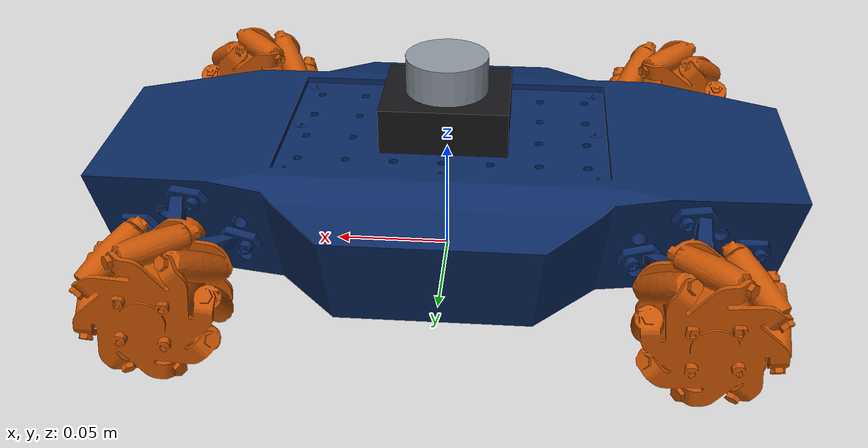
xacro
<?xml version="1.0"?>
<!-- Mecanum 01 Rev D W11.25 with an LDRobot D500 LiDAR. -->
<robot name="revd_lidar" xmlns:xacro="http://www.ros.org/wiki/xacro">
  <xacro:arg name="prefix" default=""/>
  <xacro:arg name="use_gazebo" default="false"/>
  <xacro:arg name="controllers_file" default=""/>

  <xacro:include filename="materials.xacro"/>
  <xacro:include filename="inertials.xacro"/>
  <xacro:include filename="properties.xacro"/>
  <xacro:include filename="macros/mecanum_wheels.xacro"/>
  <xacro:include filename="base.xacro"/>
  <xacro:include filename="tof.xacro"/>
  <xacro:include filename="lidar.xacro"/>
  <xacro:include filename="imu.xacro"/>
  <xacro:include filename="ros2_control.xacro"/>
  <xacro:include filename="gazebo.xacro"/>
  <xacro:include filename="tof.gazebo.xacro"/>
  <xacro:include filename="lidar.gazebo.xacro"/>
  <xacro:include filename="imu.gazebo.xacro"/>

  <xacro:mobile_base_assembly prefix="$(arg prefix)"/>
  <xacro:mobile_base_tof_array prefix="$(arg prefix)"/>
  <xacro:mobile_base_lidar prefix="$(arg prefix)"/>
  <xacro:mobile_base_imu prefix="$(arg prefix)"/>

  <xacro:mobile_base_ros2_control
    prefix="$(arg prefix)"
    use_gazebo="$(arg use_gazebo)"
    controllers_file="$(arg controllers_file)"/>

  <xacro:if value="$(arg use_gazebo)">
    <xacro:revd_lidar_gazebo controllers_file="$(arg controllers_file)"/>
    <xacro:mobile_base_tof_gazebo prefix="$(arg prefix)"/>
    <xacro:mobile_base_lidar_gazebo prefix="$(arg prefix)"/>
    <xacro:mobile_base_imu_gazebo prefix="$(arg prefix)"/>
  </xacro:if>
</robot>

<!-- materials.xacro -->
<robot xmlns:xacro="http://www.ros.org/wiki/xacro">
  <material name="base_blue">
    <color rgba="0.04 0.16 0.38 1.0"/>
  </material>
  <material name="wheel_orange">
    <color rgba="0.78 0.33 0.02 1.0"/>
  </material>
  <material name="electronics_green">
    <color rgba="0.10 0.45 0.22 1.0"/>
  </material>
  <material name="sensor_grey">
    <color rgba="0.55 0.58 0.62 1.0"/>
  </material>
  <material name="lidar_black">
    <color rgba="0.08 0.08 0.09 1.0"/>
  </material>
</robot>

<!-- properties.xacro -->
<robot xmlns:xacro="http://www.ros.org/wiki/xacro">

  <!-- Hull bounding box (clearance_check.txt: 296.9 x 168.1 x 49.0, underside
       11.6; the rim at 60.56 is build script TOP_Z). The underside sits
       11.56 mm off the ground. -->
  <xacro:property name="hull_length" value="0.2969"/>
  <xacro:property name="hull_width" value="0.1681"/>
  <xacro:property name="hull_height" value="0.049"/>
  <xacro:property name="hull_bottom_z" value="0.01156"/>

  <!-- 60 mm printed mecanum wheel: roller envelope 59.92, 31.5 over the
       plates. FL and RR are hand A, FR and RL hand B. -->
  <xacro:property name="wheel_radius" value="0.02996"/>
  <xacro:property name="wheel_width" value="0.0315"/>
  <!-- wheelbase: front-to-rear axle spacing (build script WX = 105, AZ =
       29.96); wheel_separation: track, roller crowns at y = +-93.26 in the
       assembly mesh. -->
  <xacro:property name="wheelbase" value="0.210"/>
  <xacro:property name="wheel_separation" value="0.1865"/>

  <!-- base_link sits on the axle line, so the wheel joints are at z = 0. -->
  <xacro:property name="base_link_height" value="${wheel_radius}"/>

  <!-- JGY370 12 V 150 rpm worm motor, direct drive: 15.7 rad/s no-load,
       0.47 m/s at the wheel (Seeed 108990007 datasheet, 160 rpm variant:
       load speed 128 rpm, so expect ~0.40 m/s loaded). -->
  <xacro:property name="wheel_max_velocity" value="15.7"/>
  <xacro:property name="wheel_joint_damping" value="0.001"/>
  <xacro:property name="wheel_joint_friction" value="0.001"/>

  <xacro:property name="body_mass" value="1.40"/>
  <xacro:property name="body_com_z" value="0.030"/>
  <xacro:property name="wheel_mass" value="0.08"/>

  <xacro:property name="deck_top_z" value="0.05806"/>

  <xacro:property name="tof_board_width" value="0.0127"/>
  <xacro:property name="tof_board_length" value="0.0178"/>
  <xacro:property name="tof_pcb_thickness" value="0.00102"/>
  <xacro:property name="tof_board_offset_y" value="-0.00125"/>
  <xacro:property name="tof_board_offset_z" value="0.0001"/>
  <xacro:property name="tof_mass" value="0.0005"/>
  <!-- VL53L7CX package, 6.4 x 3.0 mm, long side across the board, standing
       the drawing's 1.6 mm above the PCB. -->
  <xacro:property name="tof_module_length" value="0.0064"/>
  <xacro:property name="tof_module_width" value="0.003"/>
  <xacro:property name="tof_module_height" value="0.0016"/>
  <xacro:property name="tof_board_thickness"
                  value="${tof_pcb_thickness + tof_module_height}"/>
  <!-- 8 x 8 zones over 60 x 60 degrees; Gazebo rays sit at zone centres,
       half a zone inside the field edge. -->
  <xacro:property name="tof_fov" value="${radians(60)}"/>
  <xacro:property name="tof_zones" value="8"/>
  <xacro:property name="tof_zone_angle" value="${tof_fov / tof_zones}"/>
  <xacro:property name="tof_half_span"
                  value="${tof_fov / 2.0 - tof_zone_angle / 2.0}"/>
  <xacro:property name="tof_min_range" value="0.02"/>
  <xacro:property name="tof_max_range" value="2.0"/>
  <xacro:property name="tof_range_resolution" value="0.001"/>
  <xacro:property name="tof_update_rate" value="15.0"/>
  <xacro:property name="tof_pitch" value="${1.5 * tof_zone_angle}"/>
  <xacro:property name="tof_ground_z" value="0.032"/>
  <xacro:property name="tof_z" value="${tof_ground_z - base_link_height}"/>
  <xacro:property name="tof_front_x"
                  value="${(0.135303 + 0.19509 * tof_ground_z) / 0.98079}"/>
  <xacro:property name="tof_side_y"
                  value="${(0.072533 + 0.19509 * tof_ground_z) / 0.98079}"/>

  <xacro:property name="lidar_length" value="0.054"/>
  <xacro:property name="lidar_width" value="0.04629"/>
  <xacro:property name="lidar_height" value="0.035"/>
  <xacro:property name="lidar_head_radius" value="${0.03529 / 2.0}"/>
  <xacro:property name="lidar_mass" value="0.045"/>
  <xacro:property name="lidar_window_below_top" value="0.0078"/>
  <xacro:property name="lidar_scan_above_base"
                  value="${lidar_height - lidar_window_below_top}"/>
  <xacro:property name="lidar_head_height"
                  value="${2.0 * lidar_window_below_top}"/>
  <xacro:property name="lidar_base_height"
                  value="${lidar_height - lidar_head_height}"/>
  <xacro:property name="lidar_adapter_t" value="0.0"/>
  <xacro:property name="lidar_x" value="0.0"/>
  <xacro:property name="lidar_y" value="0.0"/>
  <xacro:property name="lidar_z"
                  value="${deck_top_z + lidar_adapter_t + lidar_scan_above_base
                          - base_link_height}"/>
  <xacro:property name="lidar_roll" value="0.0"/>
  <xacro:property name="lidar_pitch" value="0.0"/>
  <xacro:property name="lidar_yaw" value="0.0"/>
  <xacro:property name="lidar_update_rate" value="10.0"/>
  <xacro:property name="lidar_samples" value="500"/>
  <xacro:property name="lidar_min_range" value="0.03"/>
  <xacro:property name="lidar_max_range" value="12.0"/>
  <xacro:property name="lidar_range_resolution" value="0.001"/>

  <xacro:property name="imu_x" value="0.0"/>
  <xacro:property name="imu_y" value="0.0"/>
  <xacro:property name="imu_z" value="0.0"/>
  <xacro:property name="imu_update_rate" value="100"/>
  <xacro:property name="imu_gyro_stddev" value="1.7e-3"/>
  <xacro:property name="imu_gyro_bias_stddev" value="1.5e-4"/>
  <xacro:property name="imu_accel_stddev" value="0.0104"/>

</robot>

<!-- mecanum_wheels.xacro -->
<robot xmlns:xacro="http://www.ros.org/wiki/xacro">
  <xacro:macro name="mecanum_wheel" params="prefix name mesh x y">
    <link name="${prefix}${name}_wheel_link">
      <visual>
        <geometry>
          <mesh filename="package://revd_lidar_description/meshes/${mesh}"/>
        </geometry>
        <material name="wheel_orange"/>
      </visual>

      <collision name="wheel_collision">
        <origin xyz="0 0 0" rpy="${pi / 2.0} 0 0"/>
        <geometry>
          <cylinder radius="${wheel_radius}" length="${wheel_width}"/>
        </geometry>
      </collision>

      <xacro:cylinder_inertial mass="${wheel_mass}" radius="${wheel_radius}"
                               length="${wheel_width}">
        <origin xyz="0 0 0" rpy="${pi / 2.0} 0 0"/>
      </xacro:cylinder_inertial>
    </link>

    <joint name="${prefix}${name}_wheel_joint" type="continuous">
      <parent link="${prefix}base_link"/>
      <child link="${prefix}${name}_wheel_link"/>
      <origin xyz="${x} ${y} 0" rpy="0 0 0"/>
      <axis xyz="0 1 0"/>
      <dynamics damping="${wheel_joint_damping}"
                friction="${wheel_joint_friction}"/>
      <limit effort="8.0" velocity="${wheel_max_velocity}"/>
    </joint>

    <!-- No contact parameters here: gz sdf -p drops them. generate_sim_sdf.py
         injects the anisotropic mecanum surface after conversion. -->
    <gazebo reference="${prefix}${name}_wheel_link">
      <selfCollide>false</selfCollide>
    </gazebo>
  </xacro:macro>
</robot>

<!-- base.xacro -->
<robot xmlns:xacro="http://www.ros.org/wiki/xacro">
  <xacro:macro name="mobile_base_assembly" params="prefix">
    <link name="${prefix}base_footprint"/>

    <joint name="${prefix}base_footprint_to_base_link_joint" type="fixed">
      <parent link="${prefix}base_footprint"/>
      <child link="${prefix}base_link"/>
      <origin xyz="0 0 ${base_link_height}" rpy="0 0 0"/>
    </joint>

    <link name="${prefix}base_link">
      <visual>
        <origin xyz="0 0 ${-base_link_height}" rpy="0 0 0"/>
        <geometry>
          <mesh filename="package://revd_lidar_description/meshes/body.stl"/>
        </geometry>
        <material name="base_blue"/>
      </visual>
      <collision>
        <origin xyz="0 0 ${hull_bottom_z + hull_height / 2.0 - base_link_height}"
                rpy="0 0 0"/>
        <geometry>
          <box size="${hull_length} ${hull_width} ${hull_height}"/>
        </geometry>
      </collision>
      <xacro:box_inertial mass="${body_mass}"
                          x="${hull_length}" y="${hull_width}" z="${hull_height}">
        <origin xyz="0 0 ${body_com_z - base_link_height}" rpy="0 0 0"/>
      </xacro:box_inertial>
    </link>

    <!-- Wheel joint names are coupled to ros2_control and controller YAML. -->
    <xacro:mecanum_wheel prefix="${prefix}" name="front_left" mesh="wheel_fl.stl"
                         x="${wheelbase / 2.0}" y="${wheel_separation / 2.0}"/>
    <xacro:mecanum_wheel prefix="${prefix}" name="front_right" mesh="wheel_fr.stl"
                         x="${wheelbase / 2.0}" y="${-wheel_separation / 2.0}"/>
    <xacro:mecanum_wheel prefix="${prefix}" name="rear_right" mesh="wheel_rr.stl"
                         x="${-wheelbase / 2.0}" y="${-wheel_separation / 2.0}"/>
    <xacro:mecanum_wheel prefix="${prefix}" name="rear_left" mesh="wheel_rl.stl"
                         x="${-wheelbase / 2.0}" y="${wheel_separation / 2.0}"/>
  </xacro:macro>
</robot>

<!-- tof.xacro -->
<robot xmlns:xacro="http://www.ros.org/wiki/xacro">
  <xacro:macro name="mobile_base_tof" params="prefix name x y z pitch yaw">
    <link name="${prefix}tof_${name}_link">
      <!-- The populated PCB, set back behind the module that stands on it. -->

      <visual>
        <origin
          xyz="${-tof_module_height - tof_pcb_thickness / 2.0}
               ${tof_board_offset_y} ${tof_board_offset_z}"
          rpy="0 0 0"/>
        <geometry>
          <box size="${tof_pcb_thickness} ${tof_board_width}
                     ${tof_board_length}"/>
        </geometry>
        <material name="electronics_green"/>
      </visual>
      <!-- The sensor package; its front face is the aperture. -->
      <visual>
        <origin xyz="${-tof_module_height / 2.0} 0 0" rpy="0 0 0"/>
        <geometry>
          <box size="${tof_module_height} ${tof_module_length}
                     ${tof_module_width}"/>
        </geometry>
        <material name="sensor_grey"/>
      </visual>
      <!-- One box over the whole carrier, board and module together. -->
      <collision>
        <origin xyz="${-tof_board_thickness / 2.0}
                     ${tof_board_offset_y} ${tof_board_offset_z}" rpy="0 0 0"/>
        <geometry>
          <box size="${tof_board_thickness} ${tof_board_width}
                     ${tof_board_length}"/>
        </geometry>
      </collision>
      <xacro:box_inertial mass="${tof_mass}"
                          x="${tof_board_thickness}" y="${tof_board_width}"
                          z="${tof_board_length}">
        <origin xyz="${-tof_board_thickness / 2.0}
                     ${tof_board_offset_y} ${tof_board_offset_z}" rpy="0 0 0"/>
      </xacro:box_inertial>
    </link>

    <joint name="${prefix}base_link_to_tof_${name}_link_joint" type="fixed">
      <parent link="${prefix}base_link"/>
      <child link="${prefix}tof_${name}_link"/>
      <origin xyz="${x} ${y} ${z}" rpy="0 ${pitch} ${yaw}"/>
    </joint>

    <link name="${prefix}tof_${name}_rows_frame"/>
    <joint name="${prefix}base_link_to_tof_${name}_rows_frame_joint"
           type="fixed">
      <parent link="${prefix}base_link"/>
      <child link="${prefix}tof_${name}_rows_frame"/>
      <origin xyz="${x} ${y} ${z}" rpy="${-pi / 2.0} 0 ${yaw - pi / 2.0}"/>
    </joint>
  </xacro:macro>

  <!-- One sensor at the centre of each hull face. The four 60 degree fans
       cover 240 of 360 degrees; the D500 covers the 30 degree corner wedges
       above its scan plane. -->
  <xacro:macro name="mobile_base_tof_array" params="prefix">
    <xacro:mobile_base_tof prefix="${prefix}" name="front"
                           x="${tof_front_x}" y="0" z="${tof_z}"
                           pitch="${tof_pitch}" yaw="0"/>
    <xacro:mobile_base_tof prefix="${prefix}" name="rear"
                           x="${-tof_front_x}" y="0" z="${tof_z}"
                           pitch="${tof_pitch}" yaw="${pi}"/>
    <xacro:mobile_base_tof prefix="${prefix}" name="left"
                           x="0" y="${tof_side_y}" z="${tof_z}"
                           pitch="${tof_pitch}" yaw="${pi / 2.0}"/>
    <xacro:mobile_base_tof prefix="${prefix}" name="right"
                           x="0" y="${-tof_side_y}" z="${tof_z}"
                           pitch="${tof_pitch}" yaw="${-pi / 2.0}"/>
  </xacro:macro>
</robot>

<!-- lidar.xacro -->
<robot xmlns:xacro="http://www.ros.org/wiki/xacro">
  <xacro:macro name="mobile_base_lidar" params="prefix">
    <link name="${prefix}laser_link">
      <visual>
        <origin xyz="0 0 ${lidar_base_height / 2.0 - lidar_scan_above_base}"
                rpy="0 0 0"/>
        <geometry>
          <box size="${lidar_length} ${lidar_width} ${lidar_base_height}"/>
        </geometry>
        <material name="lidar_black"/>
      </visual>
      <visual>
        <geometry>
          <cylinder radius="${lidar_head_radius}"
                    length="${lidar_head_height}"/>
        </geometry>
        <material name="sensor_grey"/>
      </visual>
      <collision>
        <origin xyz="0 0 ${lidar_height / 2.0 - lidar_scan_above_base}"
                rpy="0 0 0"/>
        <geometry>
          <box size="${lidar_length} ${lidar_width} ${lidar_height}"/>
        </geometry>
      </collision>
      <xacro:box_inertial mass="${lidar_mass}"
                          x="${lidar_length}" y="${lidar_width}"
                          z="${lidar_height}">
        <origin xyz="0 0 ${lidar_height / 2.0 - lidar_scan_above_base}"
                rpy="0 0 0"/>
      </xacro:box_inertial>
    </link>

    <joint name="${prefix}base_link_to_laser_link_joint" type="fixed">
      <parent link="${prefix}base_link"/>
      <child link="${prefix}laser_link"/>
      <origin xyz="${lidar_x} ${lidar_y} ${lidar_z}"
              rpy="${lidar_roll} ${lidar_pitch} ${lidar_yaw}"/>
    </joint>
  </xacro:macro>
</robot>

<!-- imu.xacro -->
<robot xmlns:xacro="http://www.ros.org/wiki/xacro">
  <!-- BNO085 IMU: a frame only, REP-103 axes like base_link. -->
  <xacro:macro name="mobile_base_imu" params="prefix">
    <link name="${prefix}imu_link"/>
    <joint name="${prefix}base_link_to_imu_link_joint" type="fixed">
      <parent link="${prefix}base_link"/>
      <child link="${prefix}imu_link"/>
      <origin xyz="${imu_x} ${imu_y} ${imu_z}" rpy="0 0 0"/>
    </joint>
  </xacro:macro>
</robot>
